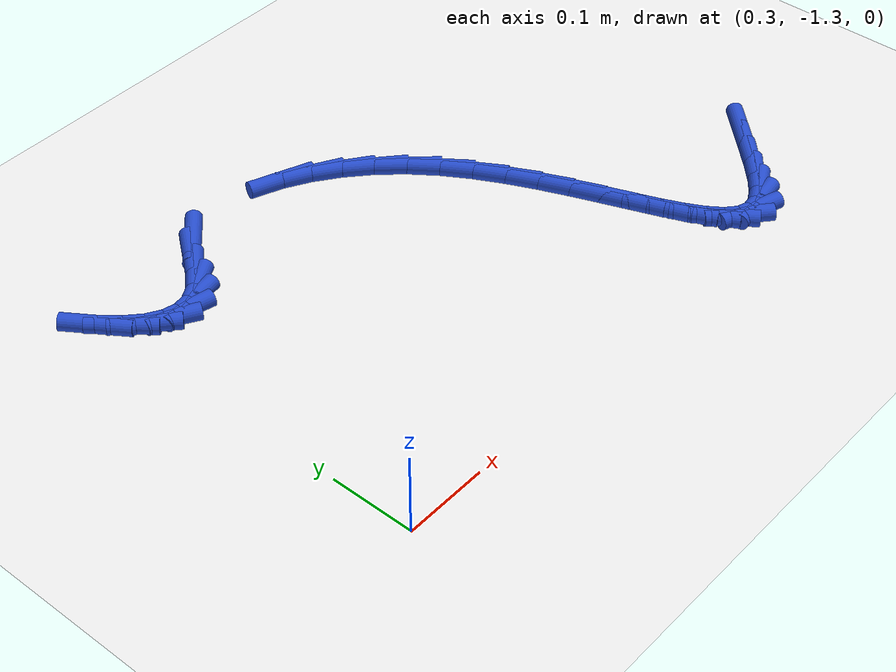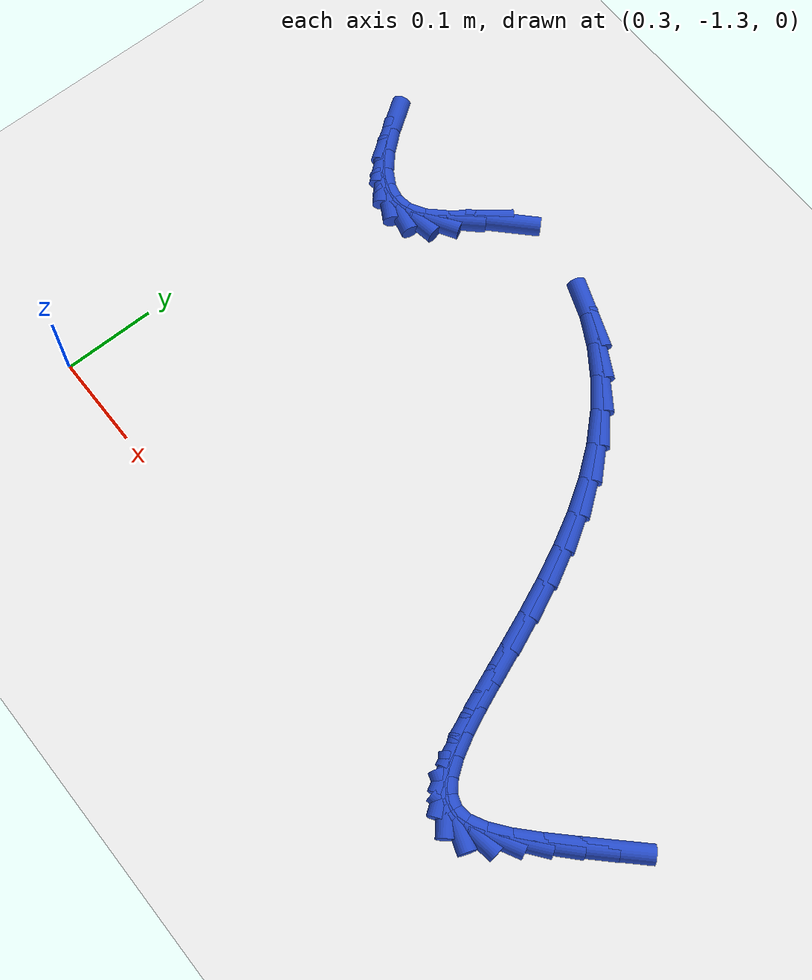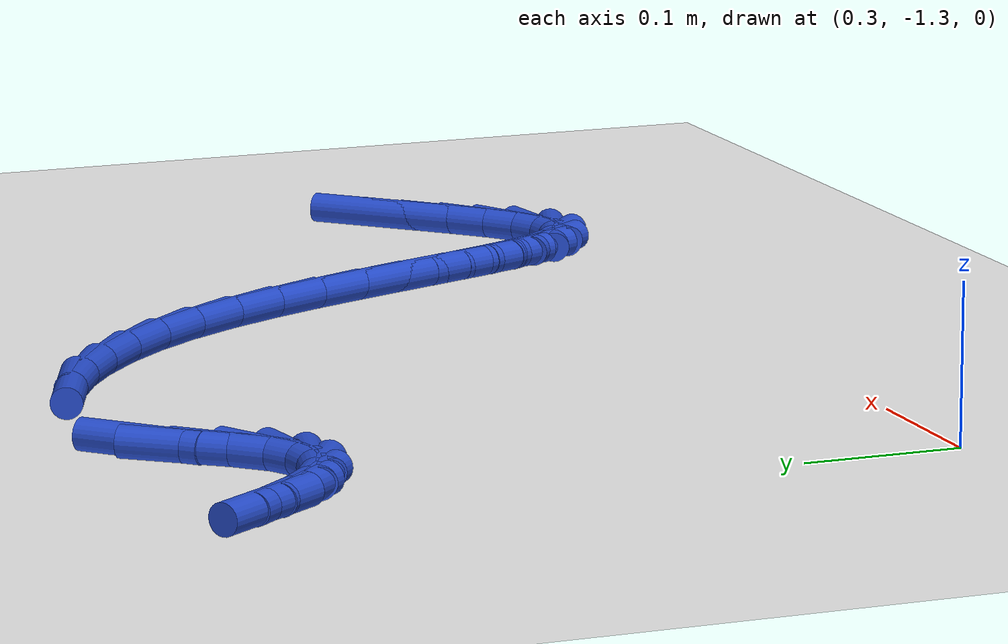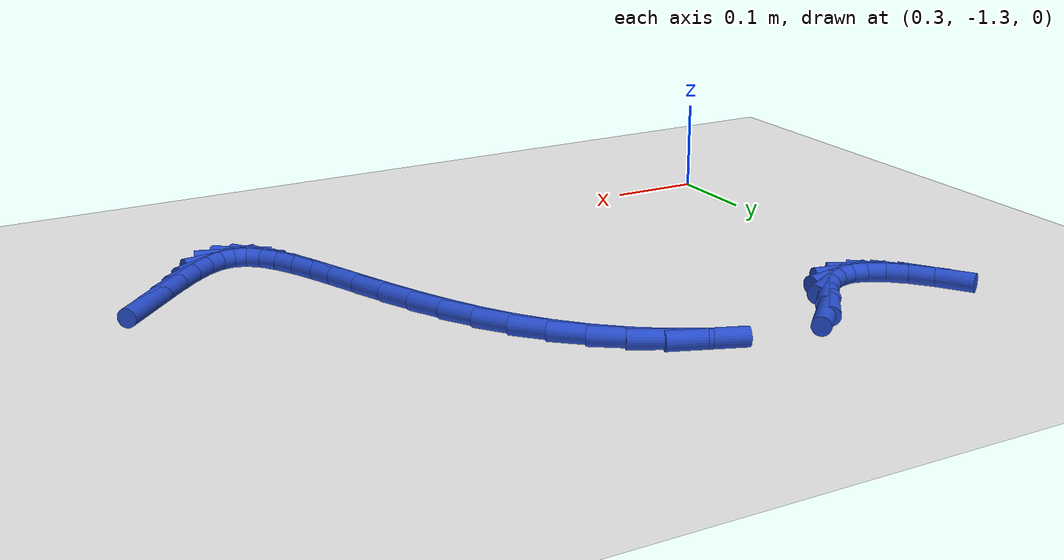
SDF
<sdf version="1.6">
 <world name="default">
  <model name="ground_plane">
   <static>1</static>
   <link name="link">
    <collision name="collision">
     <geometry><plane><normal>0 0 1</normal><size>100 100</size></plane></geometry>
     <surface><friction><ode><mu>100</mu><mu2>50</mu2></ode></friction></surface>
    </collision>
    <visual name="visual">
     <cast_shadows>0</cast_shadows>
     <geometry><plane><normal>0 0 1</normal><size>100 100</size></plane></geometry>
     <material>
      <script><uri>file://media/materials/scripts/gazebo.material</uri><name>Gazebo/WhiteGlow</name></script>
     </material>
    </visual>
   </link>
  </model>
  <model name="line">
   <link name="link_205">
    <pose>1.00961196649651 -1.1886211120035568 0.01 0 1.57 0.8007498359389035</pose>
    <collision name="collision">
     <geometry><cylinder><radius>0.01</radius><length>0.08</length></cylinder></geometry>
    </collision>
    <visual name="visual">
     <material>
      <script><name>Gazebo/Blue</name><uri>file://media/materials/scripts/gazebo.material</uri></script>
     </material>
     <geometry><cylinder><radius>0.01</radius><length>0.08</length></cylinder></geometry>
    </visual>
   </link>
   <link name="link_206">
    <pose>0.986576630583923 -1.2123747940307767 0.01 0 1.57 0.7938093012497726</pose>
    <collision name="collision">
     <geometry><cylinder><radius>0.01</radius><length>0.08</length></cylinder></geometry>
    </collision>
    <visual name="visual">
     <material>
      <script><name>Gazebo/Blue</name><uri>file://media/materials/scripts/gazebo.material</uri></script>
     </material>
     <geometry><cylinder><radius>0.01</radius><length>0.08</length></cylinder></geometry>
    </visual>
   </link>
   <link name="link_207">
    <pose>0.9647485527812723 -1.2345731933346384 0.01 0 1.57 0.7543448885250271</pose>
    <collision name="collision">
     <geometry><cylinder><radius>0.01</radius><length>0.08</length></cylinder></geometry>
    </collision>
    <visual name="visual">
     <material>
      <script><name>Gazebo/Blue</name><uri>file://media/materials/scripts/gazebo.material</uri></script>
     </material>
     <geometry><cylinder><radius>0.01</radius><length>0.08</length></cylinder></geometry>
    </visual>
   </link>
   <link name="link_208">
    <pose>0.9442671185712092 -1.2538205226211196 0.01 0 1.57 0.6651716194969861</pose>
    <collision name="collision">
     <geometry><cylinder><radius>0.01</radius><length>0.08</length></cylinder></geometry>
    </collision>
    <visual name="visual">
     <material>
      <script><name>Gazebo/Blue</name><uri>file://media/materials/scripts/gazebo.material</uri></script>
     </material>
     <geometry><cylinder><radius>0.01</radius><length>0.08</length></cylinder></geometry>
    </visual>
   </link>
   <link name="link_209">
    <pose>0.925271713436381 -1.2687209945961995 0.01 0 1.57 0.4851866777726649</pose>
    <collision name="collision">
     <geometry><cylinder><radius>0.01</radius><length>0.08</length></cylinder></geometry>
    </collision>
    <visual name="visual">
     <material>
      <script><name>Gazebo/Blue</name><uri>file://media/materials/scripts/gazebo.material</uri></script>
     </material>
     <geometry><cylinder><radius>0.01</radius><length>0.08</length></cylinder></geometry>
    </visual>
   </link>
   <link name="link_210">
    <pose>0.9079017228594389 -1.2778788219658563 0.01 0 1.57 0.13450503640522235</pose>
    <collision name="collision">
     <geometry><cylinder><radius>0.01</radius><length>0.08</length></cylinder></geometry>
    </collision>
    <visual name="visual">
     <material>
      <script><name>Gazebo/Blue</name><uri>file://media/materials/scripts/gazebo.material</uri></script>
     </material>
     <geometry><cylinder><radius>0.01</radius><length>0.08</length></cylinder></geometry>
    </visual>
   </link>
   <link name="link_211">
    <pose>0.8922746434210499 -1.2799935109682166 0.01 0 1.57 -0.3428863368502025</pose>
    <collision name="collision">
     <geometry><cylinder><radius>0.01</radius><length>0.08</length></cylinder></geometry>
    </collision>
    <visual name="visual">
     <material>
      <script><name>Gazebo/Blue</name><uri>file://media/materials/scripts/gazebo.material</uri></script>
     </material>
     <geometry><cylinder><radius>0.01</radius><length>0.08</length></cylinder></geometry>
    </visual>
   </link>
   <link name="link_212">
    <pose>0.8782289330790944 -1.2749793650018495 0.01 0 1.57 -0.7265064952729847</pose>
    <collision name="collision">
     <geometry><cylinder><radius>0.01</radius><length>0.08</length></cylinder></geometry>
    </collision>
    <visual name="visual">
     <material>
      <script><name>Gazebo/Blue</name><uri>file://media/materials/scripts/gazebo.material</uri></script>
     </material>
     <geometry><cylinder><radius>0.01</radius><length>0.08</length></cylinder></geometry>
    </visual>
   </link>
   <link name="link_213">
    <pose>0.8654106212560311 -1.263588426829423 0.01 0 1.57 -0.9581251301034036</pose>
    <collision name="collision">
     <geometry><cylinder><radius>0.01</radius><length>0.08</length></cylinder></geometry>
    </collision>
    <visual name="visual">
     <material>
      <script><name>Gazebo/Blue</name><uri>file://media/materials/scripts/gazebo.material</uri></script>
     </material>
     <geometry><cylinder><radius>0.01</radius><length>0.08</length></cylinder></geometry>
    </visual>
   </link>
   <link name="link_214">
    <pose>0.853461923923236 -1.2465893411072888 0.01 0 1.57 -1.0883690500966916</pose>
    <collision name="collision">
     <geometry><cylinder><radius>0.01</radius><length>0.08</length></cylinder></geometry>
    </collision>
    <visual name="visual">
     <material>
      <script><name>Gazebo/Blue</name><uri>file://media/materials/scripts/gazebo.material</uri></script>
     </material>
     <geometry><cylinder><radius>0.01</radius><length>0.08</length></cylinder></geometry>
    </visual>
   </link>
   <link name="link_215">
    <pose>0.8420250570520844 -1.2247507524917975 0.01 0 1.57 -1.1600899328179624</pose>
    <collision name="collision">
     <geometry><cylinder><radius>0.01</radius><length>0.08</length></cylinder></geometry>
    </collision>
    <visual name="visual">
     <material>
      <script><name>Gazebo/Blue</name><uri>file://media/materials/scripts/gazebo.material</uri></script>
     </material>
     <geometry><cylinder><radius>0.01</radius><length>0.08</length></cylinder></geometry>
    </visual>
   </link>
   <link name="link_216">
    <pose>0.8307422366139512 -1.1988413056392981 0.01 0 1.57 -1.1961499215736002</pose>
    <collision name="collision">
     <geometry><cylinder><radius>0.01</radius><length>0.08</length></cylinder></geometry>
    </collision>
    <visual name="visual">
     <material>
      <script><name>Gazebo/Blue</name><uri>file://media/materials/scripts/gazebo.material</uri></script>
     </material>
     <geometry><cylinder><radius>0.01</radius><length>0.08</length></cylinder></geometry>
    </visual>
   </link>
   <link name="link_217">
    <pose>0.8192556785802123 -1.1696296452061439 0.01 0 1.57 -1.208065232086776</pose>
    <collision name="collision">
     <geometry><cylinder><radius>0.01</radius><length>0.08</length></cylinder></geometry>
    </collision>
    <visual name="visual">
     <material>
      <script><name>Gazebo/Blue</name><uri>file://media/materials/scripts/gazebo.material</uri></script>
     </material>
     <geometry><cylinder><radius>0.01</radius><length>0.08</length></cylinder></geometry>
    </visual>
   </link>
   <link name="link_218">
    <pose>0.807207598922243 -1.1378844158486834 0.01 0 1.57 -1.201573935252206</pose>
    <collision name="collision">
     <geometry><cylinder><radius>0.01</radius><length>0.08</length></cylinder></geometry>
    </collision>
    <visual name="visual">
     <material>
      <script><name>Gazebo/Blue</name><uri>file://media/materials/scripts/gazebo.material</uri></script>
     </material>
     <geometry><cylinder><radius>0.01</radius><length>0.08</length></cylinder></geometry>
    </visual>
   </link>
   <link name="link_219">
    <pose>0.7942402136114189 -1.1043742622232695 0.01 0 1.57 -1.1792989674510277</pose>
    <collision name="collision">
     <geometry><cylinder><radius>0.01</radius><length>0.08</length></cylinder></geometry>
    </collision>
    <visual name="visual">
     <material>
      <script><name>Gazebo/Blue</name><uri>file://media/materials/scripts/gazebo.material</uri></script>
     </material>
     <geometry><cylinder><radius>0.01</radius><length>0.08</length></cylinder></geometry>
    </visual>
   </link>
   <link name="link_220">
    <pose>0.7799957386191151 -1.0698678289862507 0.01 0 1.57 -1.1419964498870734</pose>
    <collision name="collision">
     <geometry><cylinder><radius>0.01</radius><length>0.08</length></cylinder></geometry>
    </collision>
    <visual name="visual">
     <material>
      <script><name>Gazebo/Blue</name><uri>file://media/materials/scripts/gazebo.material</uri></script>
     </material>
     <geometry><cylinder><radius>0.01</radius><length>0.08</length></cylinder></geometry>
    </visual>
   </link>
   <link name="link_221">
    <pose>0.764116389916707 -1.0351337607939797 0.01 0 1.57 -1.0891702686495002</pose>
    <collision name="collision">
     <geometry><cylinder><radius>0.01</radius><length>0.08</length></cylinder></geometry>
    </collision>
    <visual name="visual">
     <material>
      <script><name>Gazebo/Blue</name><uri>file://media/materials/scripts/gazebo.material</uri></script>
     </material>
     <geometry><cylinder><radius>0.01</radius><length>0.08</length></cylinder></geometry>
    </visual>
   </link>
   <link name="link_222">
    <pose>0.7462443834755703 -1.0009407023028056 0.01 0 1.57 -1.0194390145839871</pose>
    <collision name="collision">
     <geometry><cylinder><radius>0.01</radius><length>0.08</length></cylinder></geometry>
    </collision>
    <visual name="visual">
     <material>
      <script><name>Gazebo/Blue</name><uri>file://media/materials/scripts/gazebo.material</uri></script>
     </material>
     <geometry><cylinder><radius>0.01</radius><length>0.08</length></cylinder></geometry>
    </visual>
   </link>
   <link name="link_223">
    <pose>0.7260219352670807 -0.9680572981690814 0.01 0 1.57 -0.9309204425921817</pose>
    <collision name="collision">
     <geometry><cylinder><radius>0.01</radius><length>0.08</length></cylinder></geometry>
    </collision>
    <visual name="visual">
     <material>
      <script><name>Gazebo/Blue</name><uri>file://media/materials/scripts/gazebo.material</uri></script>
     </material>
     <geometry><cylinder><radius>0.01</radius><length>0.08</length></cylinder></geometry>
    </visual>
   </link>
   <link name="link_224">
    <pose>0.7030919934417784 -0.9372520137638586 0.01 0 1.57 -0.8282208887047953</pose>
    <collision name="collision">
     <geometry><cylinder><radius>0.01</radius><length>0.08</length></cylinder></geometry>
    </collision>
    <visual name="visual">
     <material>
      <script><name>Gazebo/Blue</name><uri>file://media/materials/scripts/gazebo.material</uri></script>
     </material>
     <geometry><cylinder><radius>0.01</radius><length>0.08</length></cylinder></geometry>
    </visual>
   </link>
   <link name="link_225">
    <pose>0.677369677921614 -0.9092266690263414 0.01 0 1.57 -0.7244521446598716</pose>
    <collision name="collision">
     <geometry><cylinder><radius>0.01</radius><length>0.08</length></cylinder></geometry>
    </collision>
    <visual name="visual">
     <material>
      <script><name>Gazebo/Blue</name><uri>file://media/materials/scripts/gazebo.material</uri></script>
     </material>
     <geometry><cylinder><radius>0.01</radius><length>0.08</length></cylinder></geometry>
    </visual>
   </link>
   <link name="link_226">
    <pose>0.6494483818742594 -0.8845169982905219 0.01 0 1.57 -0.6172563811454054</pose>
    <collision name="collision">
     <geometry><cylinder><radius>0.01</radius><length>0.08</length></cylinder></geometry>
    </collision>
    <visual name="visual">
     <material>
      <script><name>Gazebo/Blue</name><uri>file://media/materials/scripts/gazebo.material</uri></script>
     </material>
     <geometry><cylinder><radius>0.01</radius><length>0.08</length></cylinder></geometry>
    </visual>
   </link>
   <link name="link_227">
    <pose>0.6200253967960918 -0.8636332947913766 0.01 0 1.57 -0.500869645816446</pose>
    <collision name="collision">
     <geometry><cylinder><radius>0.01</radius><length>0.08</length></cylinder></geometry>
    </collision>
    <visual name="visual">
     <material>
      <script><name>Gazebo/Blue</name><uri>file://media/materials/scripts/gazebo.material</uri></script>
     </material>
     <geometry><cylinder><radius>0.01</radius><length>0.08</length></cylinder></geometry>
    </visual>
   </link>
   <link name="link_228">
    <pose>0.5897980141834911 -0.8470858517638853 0.01 0 1.57 -0.3681435038327857</pose>
    <collision name="collision">
     <geometry><cylinder><radius>0.01</radius><length>0.08</length></cylinder></geometry>
    </collision>
    <visual name="visual">
     <material>
      <script><name>Gazebo/Blue</name><uri>file://media/materials/scripts/gazebo.material</uri></script>
     </material>
     <geometry><cylinder><radius>0.01</radius><length>0.08</length></cylinder></geometry>
    </visual>
   </link>
   <link name="link_233">
    <pose>0.4510003404772078 -0.8472528069254607 0.01 0 1.57 0.7749205602456481</pose>
    <collision name="collision">
     <geometry><cylinder><radius>0.01</radius><length>0.08</length></cylinder></geometry>
    </collision>
    <visual name="visual">
     <material>
      <script><name>Gazebo/Blue</name><uri>file://media/materials/scripts/gazebo.material</uri></script>
     </material>
     <geometry><cylinder><radius>0.01</radius><length>0.08</length></cylinder></geometry>
    </visual>
   </link>
   <link name="link_234">
    <pose>0.4305433417482617 -0.867285554634615 0.01 0 1.57 0.9166031064697947</pose>
    <collision name="collision">
     <geometry><cylinder><radius>0.01</radius><length>0.08</length></cylinder></geometry>
    </collision>
    <visual name="visual">
     <material>
      <script><name>Gazebo/Blue</name><uri>file://media/materials/scripts/gazebo.material</uri></script>
     </material>
     <geometry><cylinder><radius>0.01</radius><length>0.08</length></cylinder></geometry>
    </visual>
   </link>
   <link name="link_235">
    <pose>0.4127375404988867 -0.890505198784169 0.01 0 1.57 0.8083951251323885</pose>
    <collision name="collision">
     <geometry><cylinder><radius>0.01</radius><length>0.08</length></cylinder></geometry>
    </collision>
    <visual name="visual">
     <material>
      <script><name>Gazebo/Blue</name><uri>file://media/materials/scripts/gazebo.material</uri></script>
     </material>
     <geometry><cylinder><radius>0.01</radius><length>0.08</length></cylinder></geometry>
    </visual>
   </link>
   <link name="link_236">
    <pose>0.3955457279542771 -0.9085064884589761 0.01 0 1.57 0.5259657262791351</pose>
    <collision name="collision">
     <geometry><cylinder><radius>0.01</radius><length>0.08</length></cylinder></geometry>
    </collision>
    <visual name="visual">
     <material>
      <script><name>Gazebo/Blue</name><uri>file://media/materials/scripts/gazebo.material</uri></script>
     </material>
     <geometry><cylinder><radius>0.01</radius><length>0.08</length></cylinder></geometry>
    </visual>
   </link>
   <link name="link_237">
    <pose>0.37823416487378125 -0.918556033083592 0.01 0 1.57 0.15175528595313648</pose>
    <collision name="collision">
     <geometry><cylinder><radius>0.01</radius><length>0.08</length></cylinder></geometry>
    </collision>
    <visual name="visual">
     <material>
      <script><name>Gazebo/Blue</name><uri>file://media/materials/scripts/gazebo.material</uri></script>
     </material>
     <geometry><cylinder><radius>0.01</radius><length>0.08</length></cylinder></geometry>
    </visual>
   </link>
   <link name="link_238">
    <pose>0.3608372119307553 -0.921216567820756 0.01 0 1.57 -0.23255772585761542</pose>
    <collision name="collision">
     <geometry><cylinder><radius>0.01</radius><length>0.08</length></cylinder></geometry>
    </collision>
    <visual name="visual">
     <material>
      <script><name>Gazebo/Blue</name><uri>file://media/materials/scripts/gazebo.material</uri></script>
     </material>
     <geometry><cylinder><radius>0.01</radius><length>0.08</length></cylinder></geometry>
    </visual>
   </link>
   <link name="link_239">
    <pose>0.34339744518913523 -0.9170860823096585 0.01 0 1.57 -0.5344753421731127</pose>
    <collision name="collision">
     <geometry><cylinder><radius>0.01</radius><length>0.08</length></cylinder></geometry>
    </collision>
    <visual name="visual">
     <material>
      <script><name>Gazebo/Blue</name><uri>file://media/materials/scripts/gazebo.material</uri></script>
     </material>
     <geometry><cylinder><radius>0.01</radius><length>0.08</length></cylinder></geometry>
    </visual>
   </link>
   <link name="link_240">
    <pose>0.3259574407128548 -0.9067625661894905 0.01 0 1.57 -0.7410312369787061</pose>
    <collision name="collision">
     <geometry><cylinder><radius>0.01</radius><length>0.08</length></cylinder></geometry>
    </collision>
    <visual name="visual">
     <material>
      <script><name>Gazebo/Blue</name><uri>file://media/materials/scripts/gazebo.material</uri></script>
     </material>
     <geometry><cylinder><radius>0.01</radius><length>0.08</length></cylinder></geometry>
    </visual>
   </link>
   <link name="link_241">
    <pose>0.3085597745658498 -0.8908440090994433 0.01 0 1.57 -0.879366253900338</pose>
    <collision name="collision">
     <geometry><cylinder><radius>0.01</radius><length>0.08</length></cylinder></geometry>
    </collision>
    <visual name="visual">
     <material>
      <script><name>Gazebo/Blue</name><uri>file://media/materials/scripts/gazebo.material</uri></script>
     </material>
     <geometry><cylinder><radius>0.01</radius><length>0.08</length></cylinder></geometry>
    </visual>
   </link>
   <link name="link_242">
    <pose>0.2912470228120542 -0.8699284006787072 0.01 0 1.57 -0.9743957192747161</pose>
    <collision name="collision">
     <geometry><cylinder><radius>0.01</radius><length>0.08</length></cylinder></geometry>
    </collision>
    <visual name="visual">
     <material>
      <script><name>Gazebo/Blue</name><uri>file://media/materials/scripts/gazebo.material</uri></script>
     </material>
     <geometry><cylinder><radius>0.01</radius><length>0.08</length></cylinder></geometry>
    </visual>
   </link>
  </model>
 </world>
</sdf>
